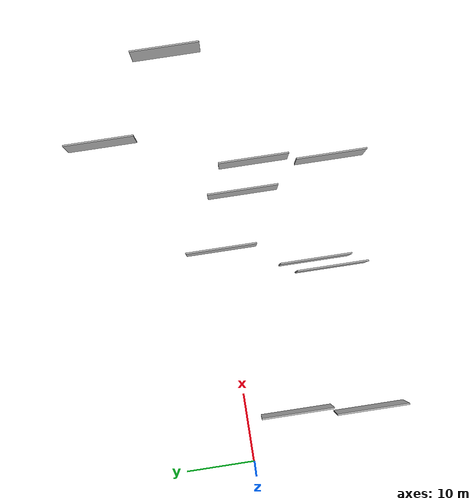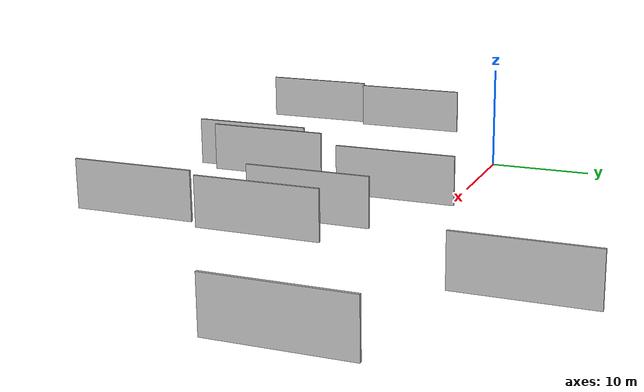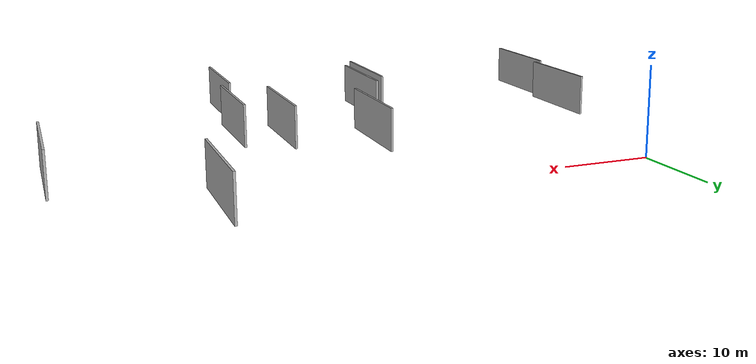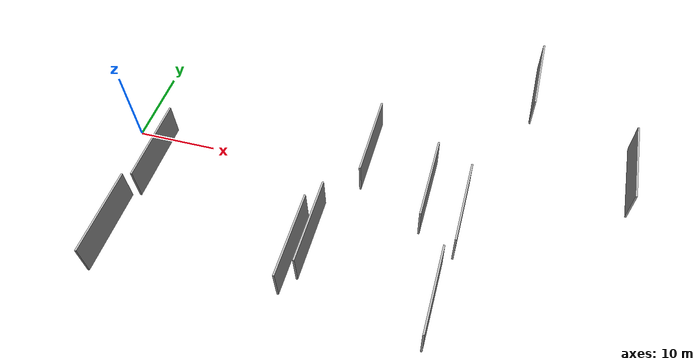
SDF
<sdf version="1.6">
 <world name="default">
  <scene>
   <sky><clouds><speed>12</speed></clouds></sky>
   <ambient>0.4 0.4 0.4 1</ambient>
   <background>0.7 0.7 0.7 1</background>
   <shadows>1</shadows>
  </scene>
  <gravity>0 0 -9.8066</gravity>
  <magnetic_field>6e-06 2.3e-05 -4.2e-05</magnetic_field>
  <physics default="0" name="default_physics" type="ode">
   <ode>
    <solver>
     <type>quick</type>
     <iters>10</iters>
     <sor>1.0</sor>
     <use_dynamic_moi_rescaling>0</use_dynamic_moi_rescaling>
    </solver>
    <constraints>
     <cfm>0</cfm>
     <erp>0.2</erp>
     <contact_max_correcting_vel>100</contact_max_correcting_vel>
     <contact_surface_layer>0.001</contact_surface_layer>
    </constraints>
   </ode>
   <max_step_size>0.004</max_step_size>
   <real_time_factor>1</real_time_factor>
   <real_time_update_rate>250</real_time_update_rate>
  </physics>
  <light name="sun" type="directional">
   <pose>0 0 10 0 0 0</pose>
   <diffuse>0.8 0.8 0.8 1</diffuse>
   <specular>0.2 0.2 0.2 1</specular>
   <attenuation>
    <range>1000</range>
    <constant>0.9</constant>
    <linear>0.01</linear>
    <quadratic>0.001</quadratic>
   </attenuation>
   <direction>-0.5 0.1 -0.9</direction>
  </light>
  <model name="grey_wall_1">
   <static>1</static>
   <pose>42.0123 -17.1759 5.0 0.000000 0.000000 1.570796</pose>
   <link name="link">
    <pose>0 0 2.00 0 0 0</pose>
    <collision name="collision"><geometry><box><size>10.00 0.2 4.00</size></box></geometry></collision>
    <visual name="visual">
     <cast_shadows>0</cast_shadows>
     <geometry><box><size>10.00 0.2 4.00</size></box></geometry>
     <material>
      <script>
       <uri>model://HANNAS_wall/materials/scripts</uri>
       <uri>model://HANNAS_wall/materials/textures</uri>
       <name>vrc/HANNAS_wall</name>
      </script>
     </material>
    </visual>
   </link>
  </model>
  <model name="grey_wall_2">
   <static>1</static>
   <pose>48.7014 14.8887 5.0 0.000000 0.000000 1.570796</pose>
   <link name="link">
    <pose>0 0 2.00 0 0 0</pose>
    <collision name="collision"><geometry><box><size>10.00 0.2 4.00</size></box></geometry></collision>
    <visual name="visual">
     <cast_shadows>0</cast_shadows>
     <geometry><box><size>10.00 0.2 4.00</size></box></geometry>
     <material>
      <script>
       <uri>model://HANNAS_wall/materials/scripts</uri>
       <uri>model://HANNAS_wall/materials/textures</uri>
       <name>vrc/HANNAS_wall</name>
      </script>
     </material>
    </visual>
   </link>
  </model>
  <model name="grey_wall_3">
   <static>1</static>
   <pose>6.2713 -17.1822 5.0 0.000000 0.000000 1.570796</pose>
   <link name="link">
    <pose>0 0 2.00 0 0 0</pose>
    <collision name="collision"><geometry><box><size>10.00 0.2 4.00</size></box></geometry></collision>
    <visual name="visual">
     <cast_shadows>0</cast_shadows>
     <geometry><box><size>10.00 0.2 4.00</size></box></geometry>
     <material>
      <script>
       <uri>model://HANNAS_wall/materials/scripts</uri>
       <uri>model://HANNAS_wall/materials/textures</uri>
       <name>vrc/HANNAS_wall</name>
      </script>
     </material>
    </visual>
   </link>
  </model>
  <model name="grey_wall_4">
   <static>1</static>
   <pose>27.8120 -12.7110 5.0 0.000000 0.000000 1.570796</pose>
   <link name="link">
    <pose>0 0 2.00 0 0 0</pose>
    <collision name="collision"><geometry><box><size>10.00 0.2 4.00</size></box></geometry></collision>
    <visual name="visual">
     <cast_shadows>0</cast_shadows>
     <geometry><box><size>10.00 0.2 4.00</size></box></geometry>
     <material>
      <script>
       <uri>model://HANNAS_wall/materials/scripts</uri>
       <uri>model://HANNAS_wall/materials/textures</uri>
       <name>vrc/HANNAS_wall</name>
      </script>
     </material>
    </visual>
   </link>
  </model>
  <model name="grey_wall_5">
   <static>1</static>
   <pose>7.2312 -6.9346 5.0 0.000000 0.000000 1.570796</pose>
   <link name="link">
    <pose>0 0 2.00 0 0 0</pose>
    <collision name="collision"><geometry><box><size>10.00 0.2 4.00</size></box></geometry></collision>
    <visual name="visual">
     <cast_shadows>0</cast_shadows>
     <geometry><box><size>10.00 0.2 4.00</size></box></geometry>
     <material>
      <script>
       <uri>model://HANNAS_wall/materials/scripts</uri>
       <uri>model://HANNAS_wall/materials/textures</uri>
       <name>vrc/HANNAS_wall</name>
      </script>
     </material>
    </visual>
   </link>
  </model>
  <model name="grey_wall_6">
   <static>1</static>
   <pose>60.6580 3.8079 5.0 0.000000 0.000000 1.570796</pose>
   <link name="link">
    <pose>0 0 2.00 0 0 0</pose>
    <collision name="collision"><geometry><box><size>10.00 0.2 4.00</size></box></geometry></collision>
    <visual name="visual">
     <cast_shadows>0</cast_shadows>
     <geometry><box><size>10.00 0.2 4.00</size></box></geometry>
     <material>
      <script>
       <uri>model://HANNAS_wall/materials/scripts</uri>
       <uri>model://HANNAS_wall/materials/textures</uri>
       <name>vrc/HANNAS_wall</name>
      </script>
     </material>
    </visual>
   </link>
  </model>
  <model name="grey_wall_7">
   <static>1</static>
   <pose>31.1672 0.0808 5.0 0.000000 0.000000 1.570796</pose>
   <link name="link">
    <pose>0 0 2.00 0 0 0</pose>
    <collision name="collision"><geometry><box><size>10.00 0.2 4.00</size></box></geometry></collision>
    <visual name="visual">
     <cast_shadows>0</cast_shadows>
     <geometry><box><size>10.00 0.2 4.00</size></box></geometry>
     <material>
      <script>
       <uri>model://HANNAS_wall/materials/scripts</uri>
       <uri>model://HANNAS_wall/materials/textures</uri>
       <name>vrc/HANNAS_wall</name>
      </script>
     </material>
    </visual>
   </link>
  </model>
  <model name="grey_wall_8">
   <static>1</static>
   <pose>26.4636 -14.8450 5.0 0.000000 0.000000 1.570796</pose>
   <link name="link">
    <pose>0 0 2.00 0 0 0</pose>
    <collision name="collision"><geometry><box><size>10.00 0.2 4.00</size></box></geometry></collision>
    <visual name="visual">
     <cast_shadows>0</cast_shadows>
     <geometry><box><size>10.00 0.2 4.00</size></box></geometry>
     <material>
      <script>
       <uri>model://HANNAS_wall/materials/scripts</uri>
       <uri>model://HANNAS_wall/materials/textures</uri>
       <name>vrc/HANNAS_wall</name>
      </script>
     </material>
    </visual>
   </link>
  </model>
  <model name="grey_wall_9">
   <static>1</static>
   <pose>38.8616 -4.1000 5.0 0.000000 0.000000 1.570796</pose>
   <link name="link">
    <pose>0 0 2.00 0 0 0</pose>
    <collision name="collision"><geometry><box><size>10.00 0.2 4.00</size></box></geometry></collision>
    <visual name="visual">
     <cast_shadows>0</cast_shadows>
     <geometry><box><size>10.00 0.2 4.00</size></box></geometry>
     <material>
      <script>
       <uri>model://HANNAS_wall/materials/scripts</uri>
       <uri>model://HANNAS_wall/materials/textures</uri>
       <name>vrc/HANNAS_wall</name>
      </script>
     </material>
    </visual>
   </link>
  </model>
  <model name="grey_wall_10">
   <static>1</static>
   <pose>43.0276 -6.2732 5.0 0.000000 0.000000 1.570796</pose>
   <link name="link">
    <pose>0 0 2.00 0 0 0</pose>
    <collision name="collision"><geometry><box><size>10.00 0.2 4.00</size></box></geometry></collision>
    <visual name="visual">
     <cast_shadows>0</cast_shadows>
     <geometry><box><size>10.00 0.2 4.00</size></box></geometry>
     <material>
      <script>
       <uri>model://HANNAS_wall/materials/scripts</uri>
       <uri>model://HANNAS_wall/materials/textures</uri>
       <name>vrc/HANNAS_wall</name>
      </script>
     </material>
    </visual>
   </link>
  </model>
 </world>
</sdf>
